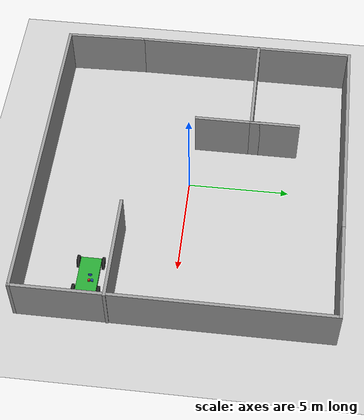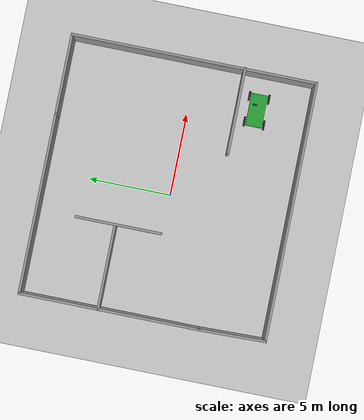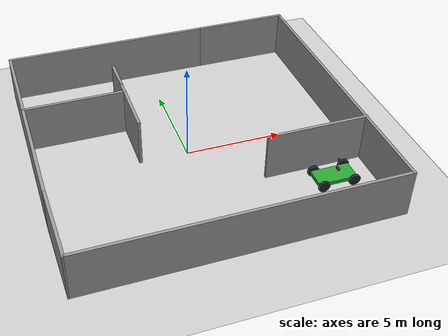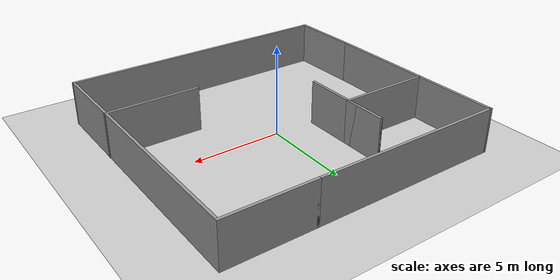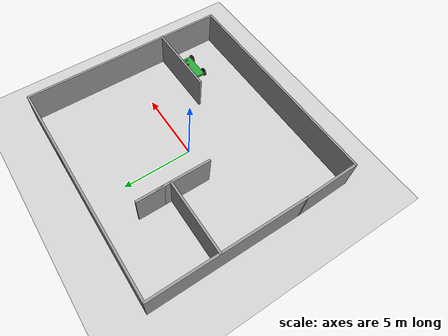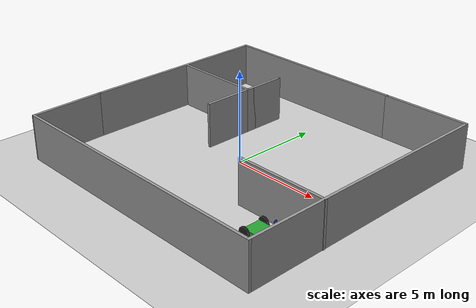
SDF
<sdf version="1.7">
 <world name="default">
  <light name="sun" type="directional">
   <pose>0 0 10 0 -0 0</pose>
   <diffuse>0.8 0.8 0.8 1</diffuse>
   <specular>0.2 0.2 0.2 1</specular>
   <attenuation>
    <range>1000</range>
    <constant>0.9</constant>
    <linear>0.01</linear>
    <quadratic>0.001</quadratic>
   </attenuation>
   <direction>-0.5 0.1 -0.9</direction>
   <spot><inner_angle>0</inner_angle><outer_angle>0</outer_angle><falloff>0</falloff></spot>
  </light>
  <model name="ground_plane">
   <static>1</static>
   <link name="link">
    <collision name="collision">
     <geometry><plane><normal>0 0 1</normal><size>100 100</size></plane></geometry>
     <surface><friction><ode><mu>100</mu><mu2>50</mu2></ode></friction></surface>
    </collision>
    <visual name="visual">
     <cast_shadows>0</cast_shadows>
     <geometry><plane><normal>0 0 1</normal><size>100 100</size></plane></geometry>
     <material>
      <script><uri>file://media/materials/scripts/gazebo.material</uri><name>Gazebo/Grey</name></script>
     </material>
    </visual>
   </link>
  </model>
  <gravity>0 0 -9.8</gravity>
  <magnetic_field>6e-06 2.3e-05 -4.2e-05</magnetic_field>
  <atmosphere type="adiabatic"/>
  <physics type="ode">
   <max_step_size>0.0025</max_step_size>
   <real_time_factor>1</real_time_factor>
   <real_time_update_rate>400</real_time_update_rate>
  </physics>
  <scene><ambient>0.4 0.4 0.4 1</ambient><background>0.7 0.7 0.7 1</background><shadows>1</shadows></scene>
  <audio><device>default</device></audio>
  <spherical_coordinates>
   <surface_model>EARTH_WGS84</surface_model>
   <latitude_deg>0</latitude_deg>
   <longitude_deg>0</longitude_deg>
   <elevation>0</elevation>
   <heading_deg>0</heading_deg>
  </spherical_coordinates>
  <model name="room1">
   <pose>0.334009 0.189005 0 0 -0 0</pose>
   <link name="Wall_0">
    <collision name="Wall_0_Collision">
     <geometry><box><size>11 0.15 2.5</size></box></geometry>
     <pose>0 0 1.25 0 -0 0</pose>
    </collision>
    <visual name="Wall_0_Visual">
     <pose>0 0 1.25 0 -0 0</pose>
     <geometry><box><size>11 0.15 2.5</size></box></geometry>
     <material>
      <script><uri>file://media/materials/scripts/gazebo.material</uri><name>Gazebo/Grey</name></script>
      <ambient>1 1 1 1</ambient>
     </material>
     <meta><layer>0</layer></meta>
    </visual>
    <pose>-7.8632 2.00093 0 0 -0 1.5708</pose>
   </link>
   <link name="Wall_10">
    <collision name="Wall_10_Collision">
     <geometry><box><size>4.15125 0.15 2.5</size></box></geometry>
     <pose>0 0 1.25 0 -0 0</pose>
    </collision>
    <visual name="Wall_10_Visual">
     <pose>0 0 1.25 0 -0 0</pose>
     <geometry><box><size>4.15125 0.15 2.5</size></box></geometry>
     <material>
      <script><uri>file://media/materials/scripts/gazebo.material</uri><name>Gazebo/Grey</name></script>
      <ambient>1 1 1 1</ambient>
     </material>
     <meta><layer>0</layer></meta>
    </visual>
    <pose>-7.8132 -5.42408 0 0 -0 1.59579</pose>
   </link>
   <link name="Wall_13">
    <collision name="Wall_13_Collision">
     <geometry><box><size>5.25 0.15 2.5</size></box></geometry>
     <pose>0 0 1.25 0 -0 0</pose>
    </collision>
    <visual name="Wall_13_Visual">
     <pose>0 0 1.25 0 -0 0</pose>
     <geometry><box><size>5.25 0.15 2.5</size></box></geometry>
     <material>
      <script><uri>file://media/materials/scripts/gazebo.material</uri><name>Gazebo/Grey</name></script>
      <ambient>1 1 1 1</ambient>
     </material>
     <meta><layer>0</layer></meta>
    </visual>
    <pose>-5.29625 2.66706 0 0 -0 0</pose>
   </link>
   <link name="Wall_14">
    <collision name="Wall_14_Collision">
     <geometry><box><size>2.5 0.15 2.5</size></box></geometry>
     <pose>0 0 1.25 0 -0 0</pose>
    </collision>
    <visual name="Wall_14_Visual">
     <pose>0 0 1.25 0 -0 0</pose>
     <geometry><box><size>2.5 0.15 2.5</size></box></geometry>
     <material>
      <script><uri>file://media/materials/scripts/gazebo.material</uri><name>Gazebo/Grey</name></script>
      <ambient>1 1 1 1</ambient>
     </material>
     <meta><layer>0</layer></meta>
    </visual>
    <pose>-2.74625 3.84206 0 0 -0 1.5708</pose>
   </link>
   <link name="Wall_15">
    <collision name="Wall_15_Collision">
     <geometry><box><size>5.25 0.15 2.5</size></box></geometry>
     <pose>0 0 1.25 0 -0 0</pose>
    </collision>
    <visual name="Wall_15_Visual">
     <pose>0 0 1.25 0 -0 0</pose>
     <geometry><box><size>5.25 0.15 2.5</size></box></geometry>
     <material>
      <script><uri>file://media/materials/scripts/gazebo.material</uri><name>Gazebo/Grey</name></script>
      <ambient>1 1 1 1</ambient>
     </material>
     <meta><layer>0</layer></meta>
    </visual>
    <pose>-2.74625 2.46706 0 0 -0 -1.5708</pose>
   </link>
   <link name="Wall_19">
    <collision name="Wall_19_Collision">
     <geometry><box><size>5.25 0.15 2.5</size></box></geometry>
     <pose>0 0 1.25 0 -0 0</pose>
    </collision>
    <visual name="Wall_19_Visual">
     <pose>0 0 1.25 0 -0 0</pose>
     <geometry><box><size>5.25 0.15 2.5</size></box></geometry>
     <material>
      <script><uri>file://media/materials/scripts/gazebo.material</uri><name>Gazebo/Grey</name></script>
      <ambient>1 1 1 1</ambient>
     </material>
     <meta><layer>0</layer></meta>
    </visual>
    <pose>5.31505 -3.07259 0 0 -0 3.14159</pose>
   </link>
   <link name="Wall_2">
    <collision name="Wall_2_Collision">
     <geometry><box><size>11 0.15 2.5</size></box></geometry>
     <pose>0 0 1.25 0 -0 0</pose>
    </collision>
    <visual name="Wall_2_Visual">
     <pose>0 0 1.25 0 -0 0</pose>
     <geometry><box><size>11 0.15 2.5</size></box></geometry>
     <material>
      <script><uri>file://media/materials/scripts/gazebo.material</uri><name>Gazebo/Grey</name></script>
      <ambient>1 1 1 1</ambient>
     </material>
     <meta><layer>0</layer></meta>
    </visual>
    <pose>-2.4382 7.42593 0 0 -0 0</pose>
   </link>
   <link name="Wall_7">
    <collision name="Wall_7_Collision">
     <geometry><box><size>5 0.15 2.5</size></box></geometry>
     <pose>0 0 1.25 0 -0 0</pose>
    </collision>
    <visual name="Wall_7_Visual">
     <pose>0 0 1.25 0 -0 0</pose>
     <geometry><box><size>5 0.15 2.5</size></box></geometry>
     <material>
      <script><uri>file://media/materials/scripts/gazebo.material</uri><name>Gazebo/Grey</name></script>
      <ambient>1 1 1 1</ambient>
     </material>
     <meta><layer>0</layer></meta>
    </visual>
    <pose>5.4118 7.42593 0 0 -0 0</pose>
   </link>
   <link name="Wall_8">
    <collision name="Wall_8_Collision">
     <geometry><box><size>15 0.15 2.5</size></box></geometry>
     <pose>0 0 1.25 0 -0 0</pose>
    </collision>
    <visual name="Wall_8_Visual">
     <pose>0 0 1.25 0 -0 0</pose>
     <geometry><box><size>15 0.15 2.5</size></box></geometry>
     <material>
      <script><uri>file://media/materials/scripts/gazebo.material</uri><name>Gazebo/Grey</name></script>
      <ambient>1 1 1 1</ambient>
     </material>
     <meta><layer>0</layer></meta>
    </visual>
    <pose>7.8368 0.000925 0 0 -0 -1.5708</pose>
   </link>
   <link name="Wall_9">
    <collision name="Wall_9_Collision">
     <geometry><box><size>15.75 0.15 2.5</size></box></geometry>
     <pose>0 0 1.25 0 -0 0</pose>
    </collision>
    <visual name="Wall_9_Visual">
     <pose>0 0 1.25 0 -0 0</pose>
     <geometry><box><size>15.75 0.15 2.5</size></box></geometry>
     <material>
      <script><uri>file://media/materials/scripts/gazebo.material</uri><name>Gazebo/Grey</name></script>
      <ambient>1 1 1 1</ambient>
     </material>
     <meta><layer>0</layer></meta>
    </visual>
    <pose>0.036803 -7.42408 0 0 -0 3.14159</pose>
   </link>
   <static>1</static>
  </model>
  <model name="car">
   <link name="chassis">
    <pose>0 0 0.3 0 -0 0</pose>
    <collision name="collision"><geometry><box><size>2 1 0.2</size></box></geometry></collision>
    <visual name="visual">
     <geometry><box><size>2 1 0.2</size></box></geometry>
     <material>
      <script><uri>file://media/materials/scripts/gazebo.material</uri><name>Gazebo/Green</name></script>
     </material>
    </visual>
    <inertial>
     <inertia><ixx>1</ixx><ixy>0</ixy><ixz>0</ixz><iyy>1</iyy><iyz>0</iyz><izz>1</izz></inertia>
     <mass>1</mass>
    </inertial>
   </link>
   <link name="front_left_wheel">
    <pose>0.8 0.6 0.3 -0 1.5707 1.5707</pose>
    <collision name="collision">
     <geometry><cylinder><radius>0.3</radius><length>0.1</length></cylinder></geometry>
    </collision>
    <visual name="visual">
     <geometry><cylinder><radius>0.3</radius><length>0.1</length></cylinder></geometry>
     <material>
      <script><uri>file://media/materials/scripts/gazebo.material</uri><name>Gazebo/Black</name></script>
     </material>
    </visual>
    <inertial>
     <inertia><ixx>1</ixx><ixy>0</ixy><ixz>0</ixz><iyy>1</iyy><iyz>0</iyz><izz>1</izz></inertia>
     <mass>1</mass>
    </inertial>
   </link>
   <link name="front_right_wheel">
    <pose>0.8 -0.6 0.3 -0 1.5707 1.5707</pose>
    <collision name="collision">
     <geometry><cylinder><radius>0.3</radius><length>0.1</length></cylinder></geometry>
    </collision>
    <visual name="visual">
     <geometry><cylinder><radius>0.3</radius><length>0.1</length></cylinder></geometry>
     <material>
      <script><uri>file://media/materials/scripts/gazebo.material</uri><name>Gazebo/Black</name></script>
     </material>
    </visual>
    <inertial>
     <inertia><ixx>1</ixx><ixy>0</ixy><ixz>0</ixz><iyy>1</iyy><iyz>0</iyz><izz>1</izz></inertia>
     <mass>1</mass>
    </inertial>
   </link>
   <link name="back_right_wheel">
    <pose>-0.8 -0.6 0.3 -0 1.5707 1.5707</pose>
    <collision name="collision">
     <geometry><cylinder><radius>0.3</radius><length>0.1</length></cylinder></geometry>
    </collision>
    <visual name="visual">
     <geometry><cylinder><radius>0.3</radius><length>0.1</length></cylinder></geometry>
     <material>
      <script><uri>file://media/materials/scripts/gazebo.material</uri><name>Gazebo/Black</name></script>
     </material>
    </visual>
    <inertial>
     <inertia><ixx>1</ixx><ixy>0</ixy><ixz>0</ixz><iyy>1</iyy><iyz>0</iyz><izz>1</izz></inertia>
     <mass>1</mass>
    </inertial>
   </link>
   <link name="back_left_wheel">
    <pose>-0.8 0.6 0.3 -0 1.5707 1.5707</pose>
    <collision name="collision">
     <geometry><cylinder><radius>0.3</radius><length>0.1</length></cylinder></geometry>
    </collision>
    <visual name="visual">
     <geometry><cylinder><radius>0.3</radius><length>0.1</length></cylinder></geometry>
     <material>
      <script><uri>file://media/materials/scripts/gazebo.material</uri><name>Gazebo/Black</name></script>
     </material>
    </visual>
    <inertial>
     <inertia><ixx>1</ixx><ixy>0</ixy><ixz>0</ixz><iyy>1</iyy><iyz>0</iyz><izz>1</izz></inertia>
     <mass>1</mass>
    </inertial>
   </link>
   <link name="gas_pedal">
    <pose>0.3 0.1 0.5 0 -0 0</pose>
    <collision name="collision"><geometry><box><size>0.1 0.1 0.1</size></box></geometry></collision>
    <visual name="visual">
     <geometry><box><size>0.1 0.1 0.1</size></box></geometry>
     <material>
      <script><uri>file://media/materials/scripts/gazebo.material</uri><name>Gazebo/Red</name></script>
     </material>
    </visual>
    <inertial>
     <inertia><ixx>1</ixx><ixy>0</ixy><ixz>0</ixz><iyy>1</iyy><iyz>0</iyz><izz>1</izz></inertia>
     <mass>1</mass>
    </inertial>
   </link>
   <link name="brake_pedal">
    <pose>0.3 0.25 0.5 0 -0 0</pose>
    <collision name="collision"><geometry><box><size>0.1 0.1 0.1</size></box></geometry></collision>
    <visual name="visual">
     <geometry><box><size>0.1 0.1 0.1</size></box></geometry>
     <material>
      <script><uri>file://media/materials/scripts/gazebo.material</uri><name>Gazebo/Blue</name></script>
     </material>
    </visual>
    <inertial>
     <inertia><ixx>1</ixx><ixy>0</ixy><ixz>0</ixz><iyy>1</iyy><iyz>0</iyz><izz>1</izz></inertia>
     <mass>1</mass>
    </inertial>
   </link>
   <link name="steering_wheel">
    <pose>0.3 0.2 1 0 1.5707 0</pose>
    <collision name="collision">
     <geometry><cylinder><radius>0.1</radius><length>0.01</length></cylinder></geometry>
    </collision>
    <visual name="visual">
     <geometry><cylinder><radius>0.1</radius><length>0.01</length></cylinder></geometry>
     <material>
      <script><uri>file://media/materials/scripts/gazebo.material</uri><name>Gazebo/Blue</name></script>
     </material>
    </visual>
    <inertial>
     <inertia><ixx>1</ixx><ixy>0</ixy><ixz>0</ixz><iyy>1</iyy><iyz>0</iyz><izz>1</izz></inertia>
     <mass>1</mass>
    </inertial>
   </link>
   <joint name="gas_joint" type="prismatic">
    <parent>chassis</parent>
    <child>gas_pedal</child>
    <axis>
     <xyz expressed_in="__model__">1 0 0</xyz>
     <limit><lower>0</lower><upper>0.2</upper></limit>
     <dynamics><spring_reference>0</spring_reference><spring_stiffness>0</spring_stiffness></dynamics>
    </axis>
   </joint>
   <joint name="brake_joint" type="prismatic">
    <parent>chassis</parent>
    <child>brake_pedal</child>
    <axis>
     <xyz expressed_in="__model__">1 0 0</xyz>
     <limit><lower>0</lower><upper>0.2</upper></limit>
     <dynamics><spring_reference>0</spring_reference><spring_stiffness>0</spring_stiffness></dynamics>
    </axis>
   </joint>
   <joint name="steering_joint" type="revolute">
    <parent>chassis</parent>
    <child>steering_wheel</child>
    <axis>
     <xyz expressed_in="__model__">1 0 0</xyz>
     <limit><lower>-7.853</lower><upper>7.853</upper></limit>
     <dynamics><spring_reference>0</spring_reference><spring_stiffness>0</spring_stiffness></dynamics>
    </axis>
   </joint>
   <joint name="front_left_joint" type="revolute2">
    <parent>chassis</parent>
    <child>front_left_wheel</child>
    <axis>
     <xyz expressed_in="__model__">0 0 1</xyz>
     <limit><lower>3.56693e-08</lower><upper>3.56693e-08</upper></limit>
     <dynamics><spring_reference>0</spring_reference><spring_stiffness>0</spring_stiffness></dynamics>
    </axis>
    <axis2>
     <xyz expressed_in="__model__">0 1 0</xyz>
     <limit><upper>1e+16</upper><lower>-1e+16</lower></limit>
     <dynamics><spring_reference>0</spring_reference><spring_stiffness>0</spring_stiffness></dynamics>
    </axis2>
    <physics><ode><limit><cfm>0</cfm><erp>0.9</erp></limit></ode></physics>
   </joint>
   <joint name="front_right_joint" type="revolute2">
    <parent>chassis</parent>
    <child>front_right_wheel</child>
    <axis>
     <xyz expressed_in="__model__">0 0 1</xyz>
     <limit><lower>3.56693e-08</lower><upper>3.56693e-08</upper></limit>
     <dynamics><spring_reference>0</spring_reference><spring_stiffness>0</spring_stiffness></dynamics>
    </axis>
    <axis2>
     <xyz expressed_in="__model__">0 1 0</xyz>
     <limit><upper>1e+16</upper><lower>-1e+16</lower></limit>
     <dynamics><spring_reference>0</spring_reference><spring_stiffness>0</spring_stiffness></dynamics>
    </axis2>
    <physics><ode><limit><cfm>0</cfm><erp>0.9</erp></limit></ode></physics>
   </joint>
   <joint name="back_right_joint" type="revolute2">
    <parent>chassis</parent>
    <child>back_right_wheel</child>
    <axis>
     <xyz expressed_in="__model__">0 0 1</xyz>
     <limit><lower>0</lower><upper>0</upper></limit>
     <dynamics><spring_reference>0</spring_reference><spring_stiffness>0</spring_stiffness></dynamics>
    </axis>
    <axis2>
     <xyz expressed_in="__model__">0 1 0</xyz>
     <limit><upper>1e+16</upper><lower>-1e+16</lower></limit>
     <dynamics><spring_reference>0</spring_reference><spring_stiffness>0</spring_stiffness></dynamics>
    </axis2>
    <physics><ode><limit><cfm>0</cfm><erp>0.9</erp></limit></ode></physics>
   </joint>
   <joint name="back_left_joint" type="revolute2">
    <parent>chassis</parent>
    <child>back_left_wheel</child>
    <axis>
     <xyz expressed_in="__model__">0 0 1</xyz>
     <limit><lower>0</lower><upper>0</upper></limit>
     <dynamics><spring_reference>0</spring_reference><spring_stiffness>0</spring_stiffness></dynamics>
    </axis>
    <axis2>
     <xyz expressed_in="__model__">0 1 0</xyz>
     <limit><upper>1e+16</upper><lower>-1e+16</lower></limit>
     <dynamics><spring_reference>0</spring_reference><spring_stiffness>0</spring_stiffness></dynamics>
    </axis2>
    <physics><ode><limit><cfm>0</cfm><erp>0.9</erp></limit></ode></physics>
   </joint>
   <plugin name="vehicle" filename="libVehiclePlugin.so">
    <front_left>front_left_joint</front_left>
    <front_right>front_right_joint</front_right>
    <back_left>back_left_joint</back_left>
    <back_right>back_right_joint</back_right>
    <gas>gas_joint</gas>
    <brake>brake_joint</brake>
    <steering>steering_joint</steering>
    <front_power>10</front_power>
    <rear_power>10</rear_power>
    <tire_angle_range>0.5</tire_angle_range>
    <max_speed>10</max_speed>
    <aero_load>0.1</aero_load>
   </plugin>
   <pose>6.08169 -4.12083 5e-06 0 -0 1e-05</pose>
  </model>
 </world>
</sdf>
